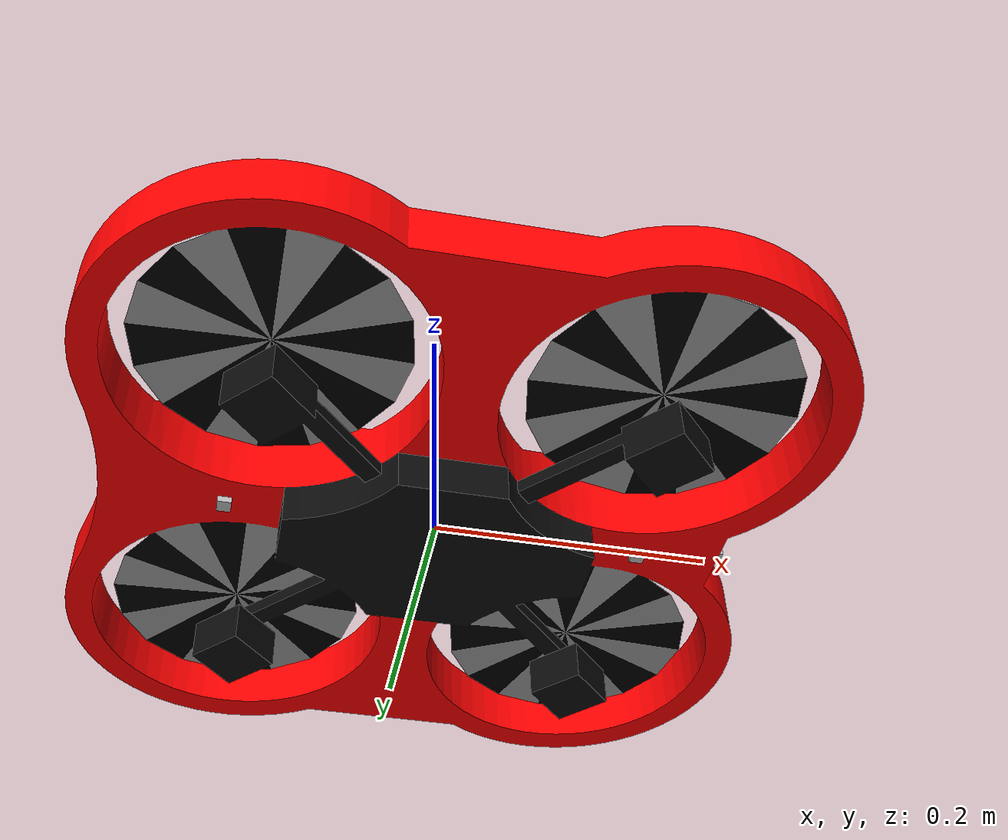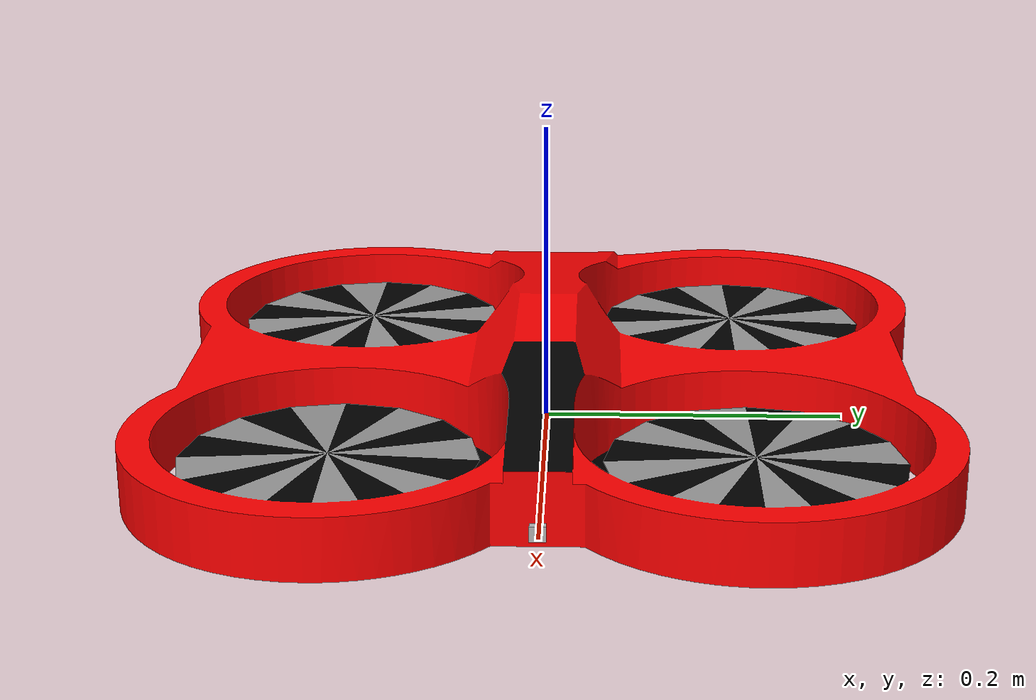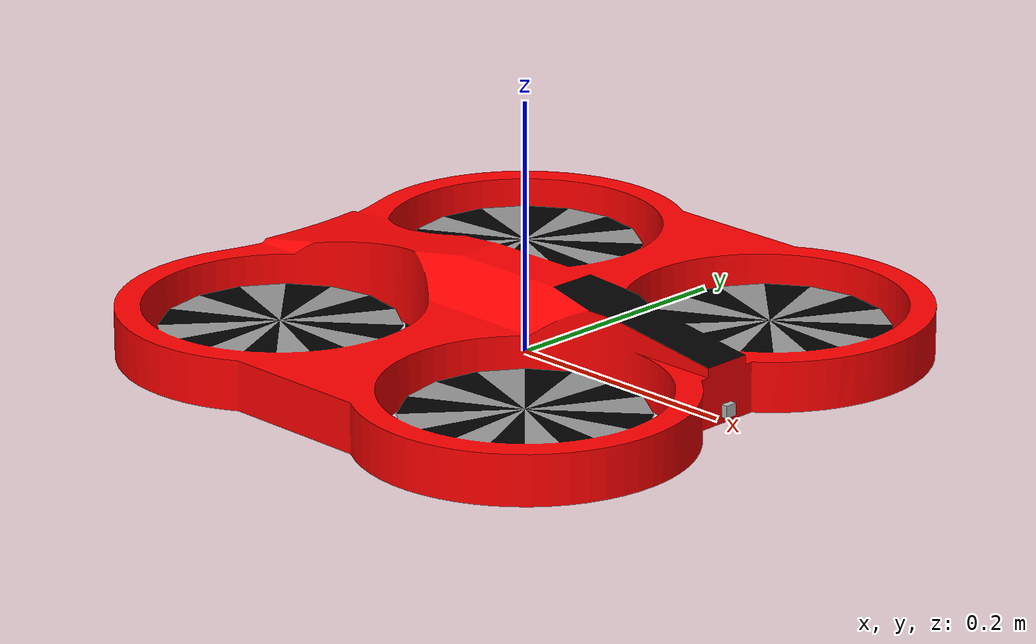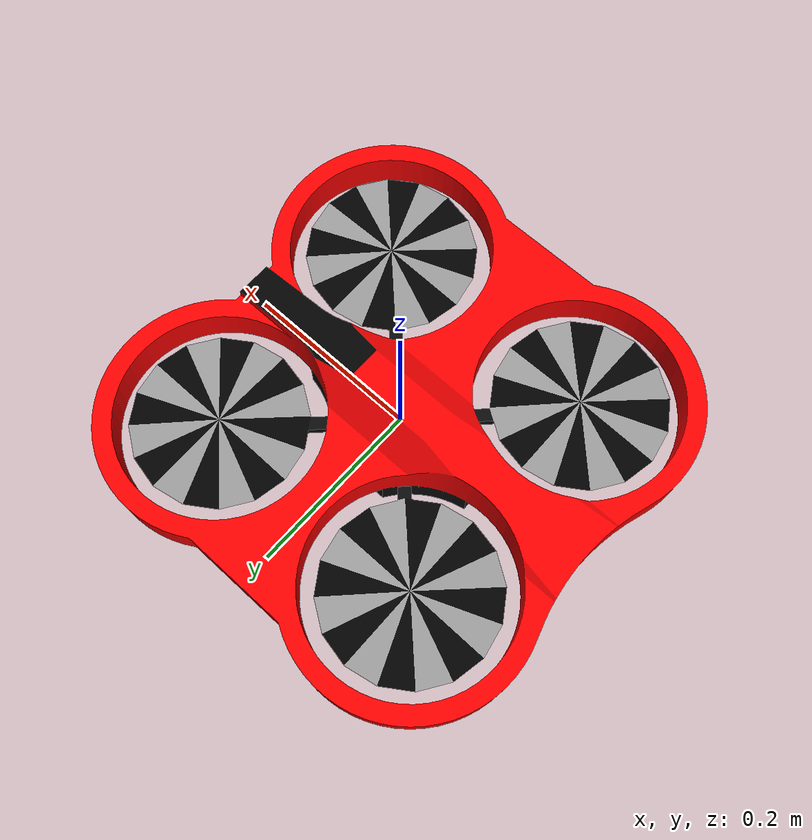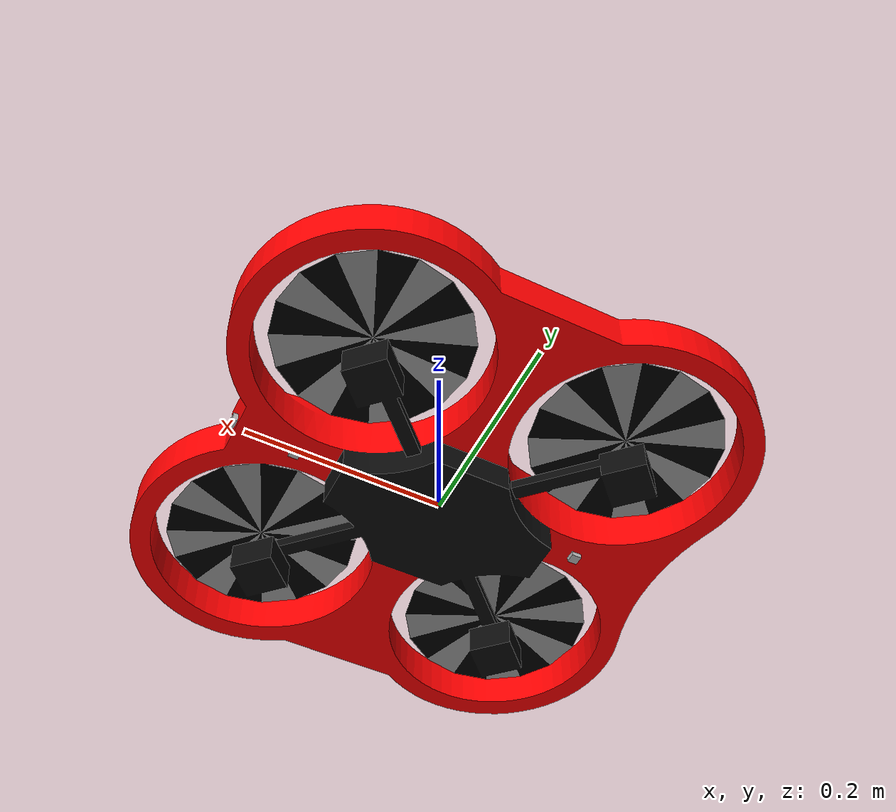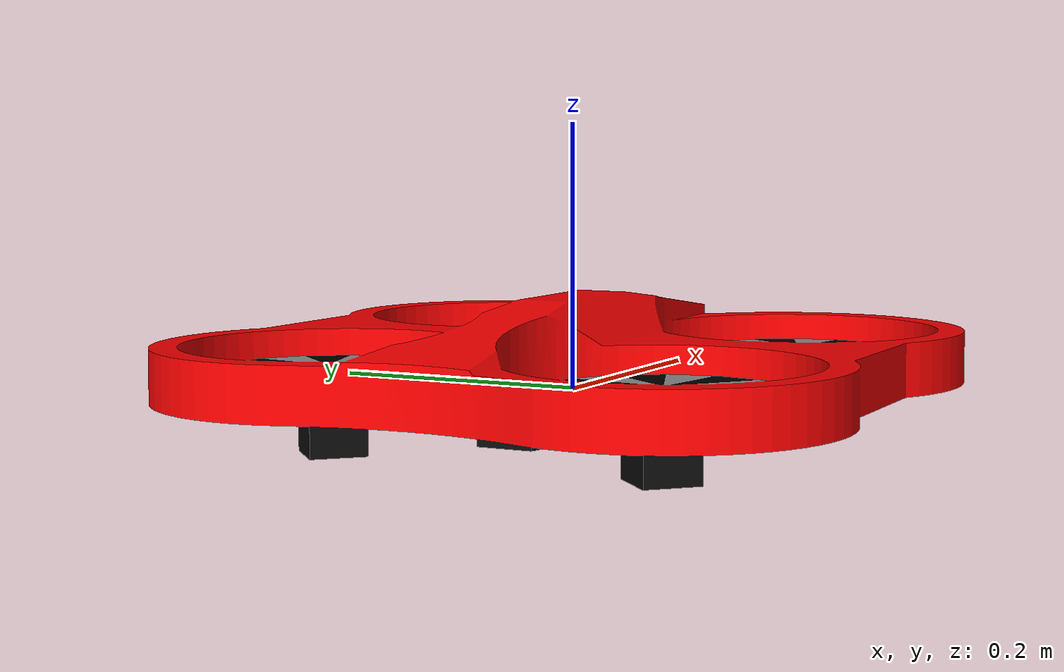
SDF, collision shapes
<?xml version="1.0" ?>
<sdf version="1.5">
  <model name='quadrotor'>
    <plugin name='ardroneplugin' filename='libquadrotorplugin2.so'>
      <alwaysOn>1</alwaysOn>
      <updateRate>10.0</updateRate>
      <bodyName>base_link</bodyName>
      <!--control configuration -->
      <velocityXYLimit>3</velocityXYLimit>
      <velocityZLimit>5</velocityZLimit>
      <takeoffSpeed>3</takeoffSpeed>
      <takeoffCompletedAt>1.5</takeoffCompletedAt>
      <landSpeed>1</landSpeed>
      <landCompletedAt>0.2</landCompletedAt>
      <!-- motion noise -->
      <offset>0</offset>
      <drift>0.1</drift>
      <motionSmallNoise>0</motionSmallNoise>
      <motionDriftNoise>0</motionDriftNoise>
      <motionDriftNoiseTime>1.0</motionDriftNoiseTime>
      <!-- PID control params -->
      <rollpitchProportionalGain>10.0</rollpitchProportionalGain>
      <rollpitchDifferentialGain>5.0</rollpitchDifferentialGain>
      <rollpitchLimit>0.5</rollpitchLimit>
      <yawProportionalGain>2.0</yawProportionalGain>
      <yawDifferentialGain>1.0</yawDifferentialGain>
      <yawLimit>1.5</yawLimit>
      <velocityXYProportionalGain>5.0</velocityXYProportionalGain>
      <velocityXYDifferentialGain>1.0</velocityXYDifferentialGain>
      <velocityZProportionalGain>4.5</velocityZProportionalGain>
      <velocityZDifferentialGain>0.5</velocityZDifferentialGain>
      <velocityZIntegralGain>0.0</velocityZIntegralGain>
      <!-- Ice configuration -->
      <iceConfigFile>quadrotorplugin2_red.cfg</iceConfigFile>
  </plugin>
    <link name='base_link'>
      <gravity>1</gravity>
      <self_collide>0</self_collide>
      <kinematic>0</kinematic>
      <inertial>
        <mass>1.5</mass>
        <pose>0.002540 0 0.000073 0 -0 0</pose>
        <inertia>
          <ixx>0.013721</ixx><ixy>0</ixy><ixz>-0.000023</ixz>
          <iyy>0.014476</iyy><iyz>0</iyz><izz>0.024755</izz>
      </inertia>
    </inertial>
      <collision name='base_link_geom'>
        <laser_retro>0</laser_retro>
        <pose>0 0 0 0 -0 0.00000</pose>
        <geometry>
          <mesh>
            <uri>model://ArDrone2/meshes/quadrotor/quadrotor_4.stl</uri>
        </mesh>
      </geometry>
        <surface>
          <friction>
            <ode>
              <mu>-1</mu>
              <mu2>-1</mu2>
              <fdir1>0 0 0</fdir1>
              <slip1>0</slip1>
              <slip2>0</slip2>
          </ode>
        </friction>
          <bounce>
            <restitution_coefficient>0</restitution_coefficient>
            <threshold>100000</threshold>
        </bounce>
          <contact>
            <ode>
              <soft_cfm>0</soft_cfm>
              <soft_erp>0.200000</soft_erp>
              <kp>1000000000000</kp>
              <kd>1</kd>
              <max_vel>100</max_vel>
              <min_depth>0.001000</min_depth>
          </ode>
        </contact>
      </surface>
    </collision>
      <visual name='base_link_geom_visual'>
        <cast_shadows>1</cast_shadows>
        <laser_retro>0</laser_retro>
        <transparency>0</transparency>
        <geometry>
          <mesh>
            <uri>model://RedArDrone2/meshes/quadrotor/quadrotor_4.dae</uri>
        </mesh>
      </geometry>
    </visual>
      <collision name='base_link_geom_ardrone_base_bottomcam'>
        <laser_retro>0</laser_retro>
        <pose>0.150000 0 0 -0 -0 -1.570800</pose>
        <geometry>
          <box>
            <size>0.001000 0.001000 0.001000</size>
        </box>
      </geometry>
        <surface>
          <friction>
            <ode>
              <mu>-1</mu>
              <mu2>-1</mu2>
              <fdir1>0 0 0</fdir1>
              <slip1>0</slip1>
              <slip2>0</slip2>
          </ode>
        </friction>
          <bounce>
            <restitution_coefficient>0</restitution_coefficient>
            <threshold>100000</threshold>
        </bounce>
          <contact>
            <ode>
              <soft_cfm>0</soft_cfm>
              <soft_erp>0.200000</soft_erp>
              <kp>1000000000000</kp>
              <kd>1</kd>
              <max_vel>100</max_vel>
              <min_depth>0.001000</min_depth>
          </ode>
        </contact>
      </surface>
    </collision>
      <visual name='base_link_geom_ardrone_base_bottomcam_visual'>
        <cast_shadows>1</cast_shadows>
        <laser_retro>0</laser_retro>
        <transparency>0</transparency>
        <pose>0.150000 0 -0 -0 -0 -1.570800</pose>
        <geometry>
          <box>
            <size>0.001000 0.001000 0.001000</size>
        </box>
      </geometry>
    </visual>
      <collision name='base_link_geom_ardrone_base_frontcam'>
        <laser_retro>0</laser_retro>
        <pose>0.210000 0 0.010000 -1.570800 -0 -1.570800</pose>
        <geometry>
          <box>
            <size>0.001000 0.001000 0.001000</size>
        </box>
      </geometry>
        <surface>
          <friction>
            <ode>
              <mu>-1</mu>
              <mu2>-1</mu2>
              <fdir1>0 0 0</fdir1>
              <slip1>0</slip1>
              <slip2>0</slip2>
          </ode>
        </friction>
          <bounce>
            <restitution_coefficient>0</restitution_coefficient>
            <threshold>100000</threshold>
        </bounce>
          <contact>
            <ode>
              <soft_cfm>0</soft_cfm>
              <soft_erp>0.200000</soft_erp>
              <kp>1000000000000</kp>
              <kd>1</kd>
              <max_vel>100</max_vel>
              <min_depth>0.001000</min_depth>
          </ode>
        </contact>
      </surface>
    </collision>
      <visual name='base_link_geom_ardrone_base_frontcam_visual'>
        <cast_shadows>1</cast_shadows>
        <laser_retro>0</laser_retro>
        <transparency>0</transparency>
        <pose>0.210000 -0 0.010000 -1.570800 -0 -1.570800</pose>
        <geometry>
          <box>
            <size>0.001000 0.001000 0.001000</size>
        </box>
      </geometry>
    </visual>
      <collision name='base_link_geom_bottom_link'>
        <laser_retro>0</laser_retro>
        <pose>0.150000 0 0 3.141593 -1.570793 3.141593</pose>
        <geometry>
          <box>
            <size>0.01 0.01 0.01</size>
        </box>
      </geometry>
        <surface>
          <friction>
            <ode>
              <mu>-1</mu>
              <mu2>-1</mu2>
              <fdir1>0 0 0</fdir1>
              <slip1>0</slip1>
              <slip2>0</slip2>
          </ode>
        </friction>
          <bounce>
            <restitution_coefficient>0</restitution_coefficient>
            <threshold>100000</threshold>
        </bounce>
          <contact>
            <ode>
              <soft_cfm>0</soft_cfm>
              <soft_erp>0.200000</soft_erp>
              <kp>1000000000000</kp>
              <kd>1</kd>
              <max_vel>100</max_vel>
              <min_depth>0.001</min_depth>
          </ode>
        </contact>
      </surface>
    </collision>
      <visual name='base_link_geom_bottom_link_visual'>
        <cast_shadows>1</cast_shadows>
        <laser_retro>0</laser_retro>
        <transparency>0</transparency>
        <pose>0.15 0 0 3.141590 -1.570790 3.141590</pose>
        <geometry>
          <box>
            <size>0.01 0.01 0.01</size>
        </box>
      </geometry>
        <material>
          <script>PR2/Blue</script>
      </material>
    </visual>
      <collision name='base_link_geom_front_link'>
        <laser_retro>0</laser_retro>
        <pose>0.21 0 0.01 0 -0 0</pose>
        <geometry>
          <box>
            <size>0.01 0.01 0.01</size>
        </box>
      </geometry>
        <surface>
          <friction>
            <ode>
              <mu>-1</mu>
              <mu2>-1</mu2>
              <fdir1>0 0 0</fdir1>
              <slip1>0</slip1>
              <slip2>0</slip2>
          </ode>
        </friction>
          <bounce>
            <restitution_coefficient>0</restitution_coefficient>
            <threshold>100000</threshold>
        </bounce>
          <contact>
            <ode>
              <soft_cfm>0</soft_cfm>
              <soft_erp>0.2</soft_erp>
              <kp>1000000000000</kp>
              <kd>1</kd>
              <max_vel>100</max_vel>
              <min_depth>0.001</min_depth>
          </ode>
        </contact>
      </surface>
    </collision>
      <visual name='base_link_geom_front_link_visual'>
        <cast_shadows>1</cast_shadows>
        <laser_retro>0</laser_retro>
        <transparency>0</transparency>
        <pose>0.21 0 0.01 0 -0 0</pose>
        <geometry>
          <box>
            <size>0.01 0.01 0.01</size>
        </box>
      </geometry>
        <material>
          <script>PR2/Blue</script>
      </material>
    </visual>
      <collision name='base_link_geom_sonar_link'>
        <laser_retro>0</laser_retro>
        <pose>-0.15 0 0 3.141593 1.570793 3.141593</pose>
        <geometry>
          <box>
            <size>0.01 0.01 0.01</size>
        </box>
      </geometry>
        <surface>
          <friction>
            <ode>
              <mu>-1</mu>
              <mu2>-1</mu2>
              <fdir1>0 0 0</fdir1>
              <slip1>0</slip1>
              <slip2>0</slip2>
          </ode>
        </friction>
          <bounce>
            <restitution_coefficient>0</restitution_coefficient>
            <threshold>100000</threshold>
        </bounce>
          <contact>
            <ode>
              <soft_cfm>0</soft_cfm>
              <soft_erp>0.2</soft_erp>
              <kp>1000000000000</kp>
              <kd>1</kd>
              <max_vel>100</max_vel>
              <min_depth>0.001000</min_depth>
          </ode>
        </contact>
      </surface>
    </collision>
      <visual name='base_link_geom_sonar_link_visual'>
        <cast_shadows>1</cast_shadows>
        <laser_retro>0</laser_retro>
        <transparency>0</transparency>
        <pose>-0.150000 0 0 3.141590 1.570790 3.141590</pose>
        <geometry>
          <mesh>
            <uri>model://ArDrone2/meshes/sonar_sensor/max_sonar_ez4.dae</uri>
        </mesh>
      </geometry>
    </visual>
      <sensor name='cam_sensor_ventral' type='camera'>
        <always_on>0</always_on>
        <update_rate>60</update_rate>
        <visualize>false</visualize>
        <pose>0.15 0 0 0 1.570793 0</pose>
        <camera>
          <horizontal_fov>1.413717</horizontal_fov>
          <image>
            <width>320</width>
            <height>240</height>
            <format>R8G8B8</format>
        </image>
          <clip>
            <near>0.010000</near>
            <far>100</far>
        </clip>
      </camera>
    </sensor>
      <sensor name='cam_sensor_frontal' type='camera'>
        <always_on>0</always_on>
        <update_rate>60</update_rate>
        <visualize>false</visualize>
        <pose>0.21 0 0.01 0 -0 0</pose>
        <camera>
          <horizontal_fov>1.413717</horizontal_fov>
          <image>
            <width>320</width>
            <height>240</height>
            <format>R8G8B8</format>
        </image>
          <clip>
            <near>0.010000</near>
            <far>100</far>
        </clip>
      </camera>
    </sensor>
      <sensor name='sonar' type='ray'>
        <always_on>0</always_on>
        <update_rate>10</update_rate>
        <visualize>false</visualize>
        <pose>-0.150000 0 0 3.141593 1.570793 3.141593</pose>
        <ray>
          <scan>
            <horizontal>
              <samples>3</samples>
              <resolution>1</resolution>
              <min_angle>-0.349066</min_angle>
              <max_angle>0.349066</max_angle>
          </horizontal>
            <vertical>
              <samples>3</samples>
              <resolution>1</resolution>
              <min_angle>-0.349066</min_angle>
              <max_angle>0.349066</max_angle>
          </vertical>
        </scan>
          <range>
            <min>0.010000</min>
            <max>3</max>
            <resolution>0.010000</resolution>
        </range>
      </ray>
    </sensor>
      <sensor name="imu_sensor" type="imu">
        <update_rate>20</update_rate>
    </sensor>
  </link>
</model>
</sdf>
